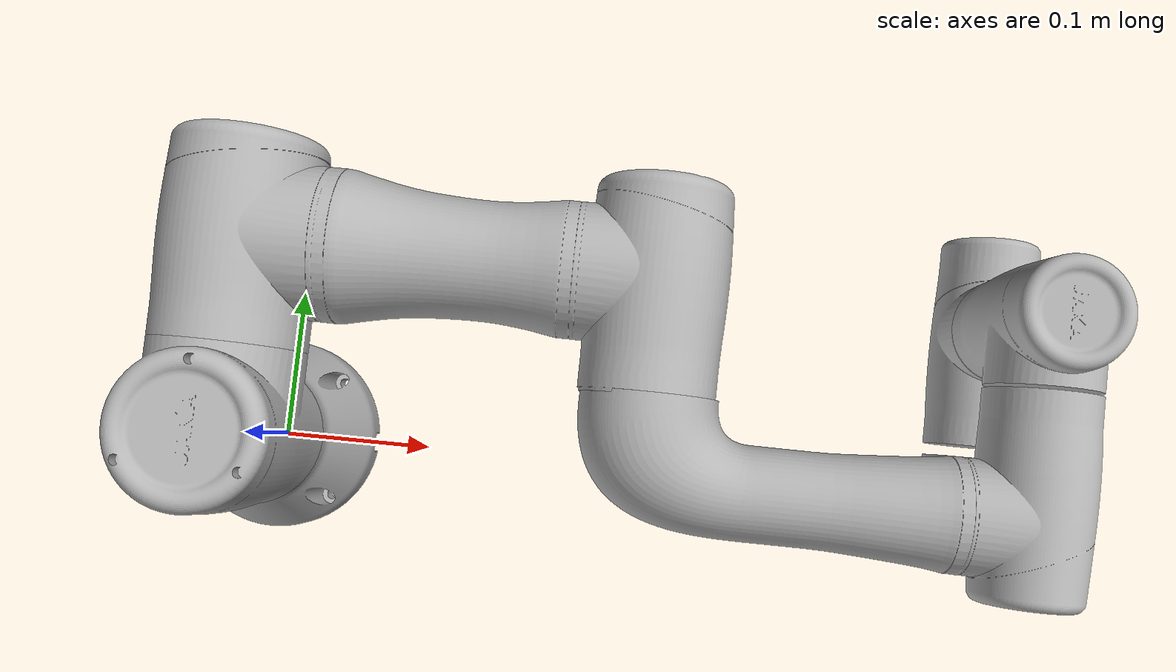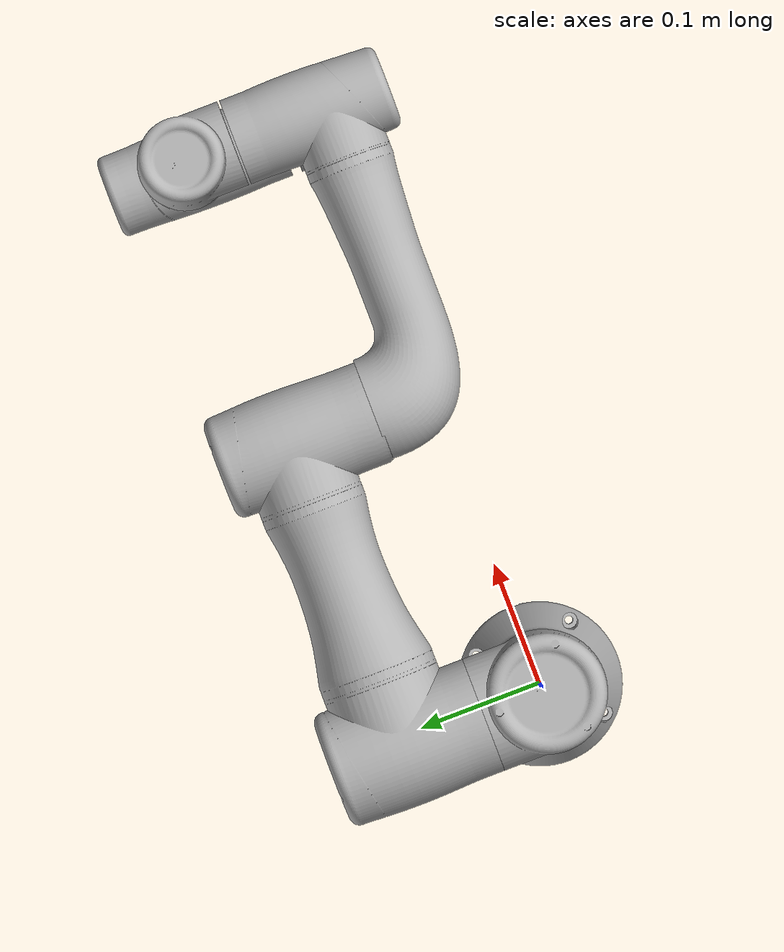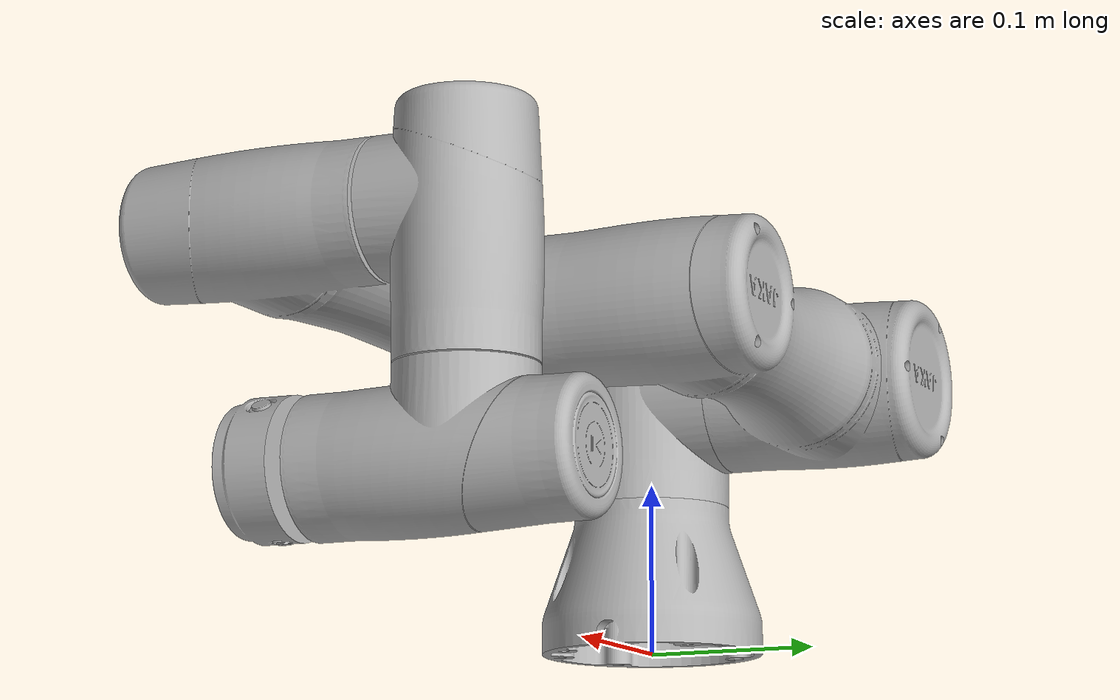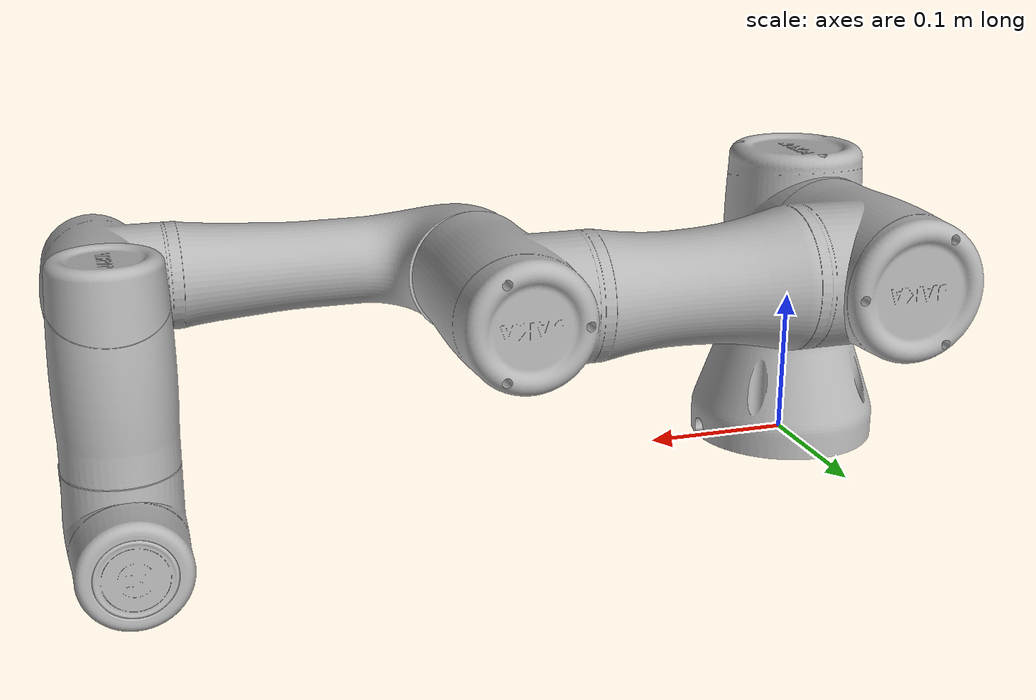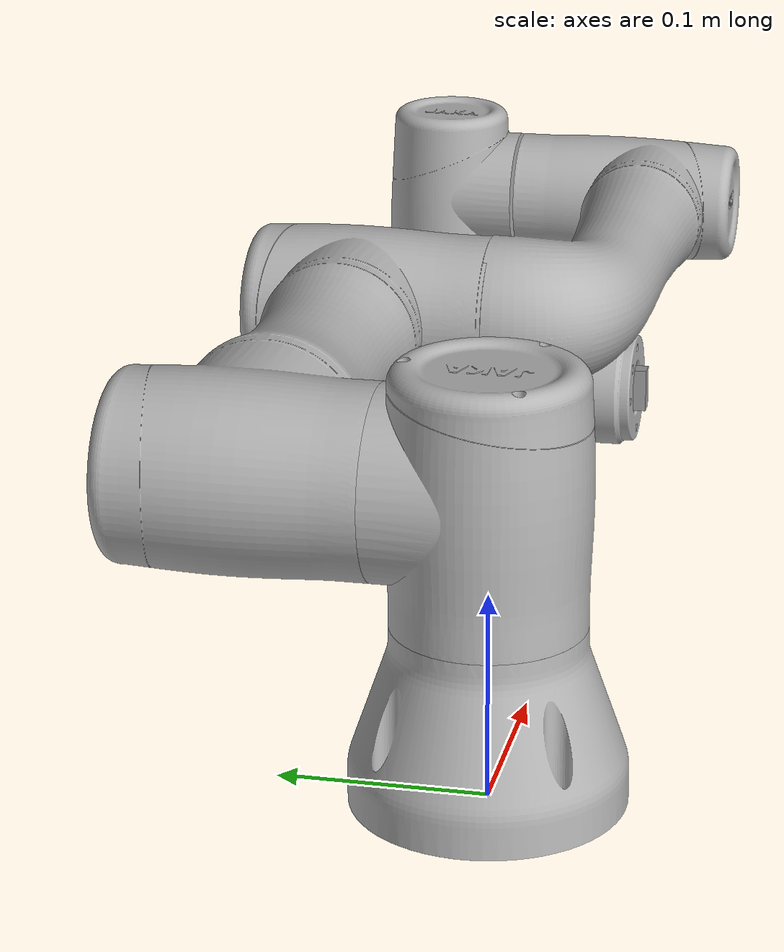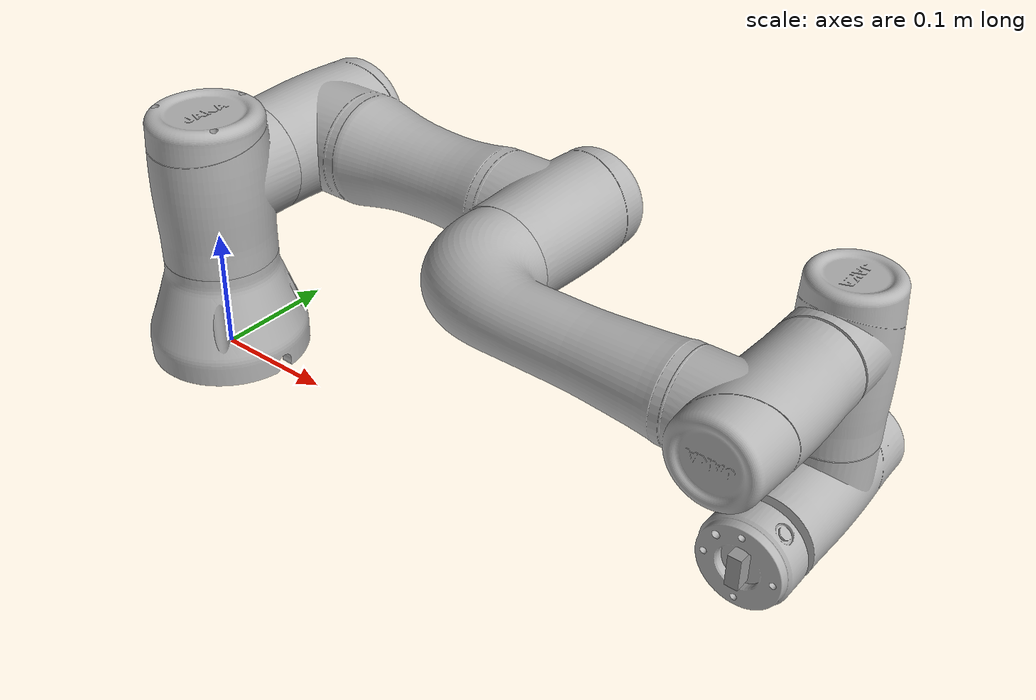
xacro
<?xml version="1.0" encoding="utf-8" ?>

<robot name="jaka_zu3" xmlns:xacro="http://www.ros.org/wiki/xacro">
  <xacro:include filename="gazebo_control.xacro" />
  <xacro:include filename="camera.xacro" />
  <xacro:macro name="cylinder_inertial" params="radius length mass *origin">
    <inertial>
      <mass value="${mass}" />
      <xacro:insert_block name="origin" />
      <inertia ixx="${0.0833333 * mass * (3 * radius * radius + length * length)}" ixy="0.0" ixz="0.0"
        iyy="${0.0833333 * mass * (3 * radius * radius + length * length)}" iyz="0.0"
        izz="${0.5 * mass * radius * radius}" />
    </inertial>
  </xacro:macro>

  <xacro:property name="base_mass" value="2.0" />  <!-- This mass might be incorrect -->
  <xacro:property name="link1_mass" value="2.0" />
  <xacro:property name="link2_mass" value="3.42" />
  <xacro:property name="link3_mass" value="1.26" />
  <xacro:property name="link4_mass" value="0.8" />
  <xacro:property name="link5_mass" value="0.8" />
  <xacro:property name="link6_mass" value="0.35" />

  <link name="base_link">
    <inertial>
      <origin xyz="-0.0015666 1.7294E-05 0.05088" rpy="0 0 0" />
      <mass value="2.0" />
      <inertia ixx="1" ixy="0" ixz="0" iyy="1" iyz="0" izz="1" />
    </inertial>
    <visual>
      <origin xyz="0 0 0" rpy="0 0 0" />
      <geometry>
        <mesh filename="package://jaka_rviz/meshes/jaka_zu3_meshes/Link_0.STL" />
      </geometry>
      <material name="Grey">
        <color rgba="0.7 0.7 0.7 1.0" />
      </material>
    </visual>
    <collision>
      <origin xyz="0 0 0" rpy="0 0 0" />
      <geometry>
        <mesh filename="package://jaka_rviz/meshes/jaka_zu3_meshes/Link_0.STL" />
      </geometry>
    </collision>
  </link>
  <gazebo reference="base_link">
    <selfCollide>true</selfCollide>
  </gazebo>

  <link name="Link_1">
    <inertial>
      <origin xyz="-3.8197E-07 0.0039623 -0.0033438" rpy="0 0 0" />
      <mass value="2.0" />
      <inertia ixx="1" ixy="0" ixz="0" iyy="1" iyz="0" izz="1" />
    </inertial>
    <visual>
      <origin xyz="0 0 0" rpy="0 0 0" />
      <geometry>
        <mesh filename="package://jaka_rviz/meshes/jaka_zu3_meshes/Link_1.STL" />
      </geometry>
      <material name="Grey">
        <color rgba="0.7 0.7 0.7 1.0" />
      </material>
    </visual>
    <collision>
      <origin xyz="0 0 0" rpy="0 0 0" />
      <geometry>
        <mesh filename="package://jaka_rviz/meshes/jaka_zu3_meshes/Link_1.STL" />
      </geometry>
    </collision>
  </link>
  <gazebo reference="Link_1">
    <selfCollide>true</selfCollide>
  </gazebo>

  <joint name="joint_1" type="revolute">
    <origin xyz="0 0 0.15055" rpy="0 0 0" />
    <parent link="base_link" />
    <child link="Link_1" />
    <axis xyz="0 0 -1" />
    <limit lower="-3.1415926" upper="3.1415926" effort="330" velocity="2.16" />
    <dynamics damping="50" friction="1" />
  </joint>

  <link name="Link_2">
    <inertial>
      <origin xyz="0.11439 -6.6036E-07 -0.11395" rpy="0 0 0" />
      <mass value="3.42" />
      <inertia ixx="1" ixy="0" ixz="0" iyy="1" iyz="0" izz="1" />
    </inertial>
    <visual>
      <origin xyz="0 0 0" rpy="0 0 0" />
      <geometry>
        <mesh filename="package://jaka_rviz/meshes/jaka_zu3_meshes/Link_2.STL" />
      </geometry>
      <material name="Grey">
        <color rgba="0.7 0.7 0.7 1.0" />
      </material>
    </visual>
    <collision>
      <origin xyz="0 0 0" rpy="0 0 0" />
      <geometry>
        <mesh filename="package://jaka_rviz/meshes/jaka_zu3_meshes/Link_2.STL" />
      </geometry>
    </collision>
  </link>
  <gazebo reference="Link_2">
    <selfCollide>true</selfCollide>
  </gazebo>

  <joint name="joint_2" type="revolute">
    <origin xyz="0 0 0" rpy="1.5708 0 0" />
    <parent link="Link_1" />
    <child link="Link_2" />
    <axis xyz="0 0 1" />
    <limit lower="-3.1415926" upper="3.1415926" effort="330" velocity="2.16" />
    <dynamics damping="50" friction="1" />
  </joint>

  <link name="Link_3">
    <inertial>
      <origin xyz="0.13218 1.2348E-05 -0.0083734" rpy="0 0 0" />
      <mass  value="1.26" />
      <inertia ixx="1" ixy="0" ixz="0" iyy="1" iyz="0" izz="1" />
    </inertial>
    <visual>
      <origin xyz="0 0 0" rpy="0 0 0" />
      <geometry>
        <mesh filename="package://jaka_rviz/meshes/jaka_zu3_meshes/Link_3.STL" />
      </geometry>
      <material name="Grey">
        <color rgba="0.7 0.7 0.7 1.0" />
      </material>
    </visual>
    <collision>
      <origin xyz="0 0 0" rpy="0 0 0" />
      <geometry>
        <mesh filename="package://jaka_rviz/meshes/jaka_zu3_meshes/Link_3.STL" />
      </geometry>
    </collision>
  </link>
  <gazebo reference="Link_3">
    <selfCollide>true</selfCollide>
  </gazebo>

  <joint name="joint_3" type="revolute">
    <origin xyz="0.248 0 0" rpy="0 0 0" />
    <parent link="Link_2" />
    <child link="Link_3" />
    <axis xyz="0 0 1" />
    <limit lower="-3.1415926" upper="3.1415926" effort="330" velocity="2.16" />
    <dynamics damping="50" friction="1" />
  </joint>

  <link name="Link_4">
    <inertial>
      <origin xyz="6.5068E-08 -0.014052 0.0031614" rpy="0 0 0" />
      <mass value="0.8" />
      <inertia ixx="1" ixy="0" ixz="0" iyy="1" iyz="0" izz="1" />
    </inertial>
    <visual>
      <origin xyz="0 0 0" rpy="0 0 0" />
      <geometry>
        <mesh filename="package://jaka_rviz/meshes/jaka_zu3_meshes/Link_4.STL" />
      </geometry>
      <material name="Grey">
        <color rgba="0.7 0.7 0.7 1.0" />
      </material>
    </visual>
    <collision>
      <origin xyz="0 0 0" rpy="0 0 0" />
      <geometry>
        <mesh filename="package://jaka_rviz/meshes/jaka_zu3_meshes/Link_4.STL" />
      </geometry>
    </collision>
  </link>
  <gazebo reference="Link_4">
    <selfCollide>true</selfCollide>
  </gazebo>

  <joint name="joint_4" type="revolute">
    <origin xyz="0.228 1.1925E-05 -0.115" rpy="0 0 0" />
    <parent link="Link_3" />
    <child link="Link_4" />
    <axis xyz="0 0 1" />
    <limit lower="-3.1415926" upper="3.1415926" effort="330" velocity="2.16" />
    <dynamics damping="50" friction="1" />
  </joint>

  <link name="Link_5">
    <inertial>
      <origin xyz="7.9256E-08 0.0068655 -0.0029086" rpy="0 0 0" />
      <mass value="0.8" />
      <inertia ixx="1" ixy="0" ixz="0" iyy="1" iyz="0" izz="1" />
    </inertial>
    <visual>
      <origin xyz="0 0 0" rpy="0 0 0" />
      <geometry>
        <mesh filename="package://jaka_rviz/meshes/jaka_zu3_meshes/Link_5.STL" />
      </geometry>
      <material name="Grey">
        <color rgba="0.7 0.7 0.7 1.0" />
      </material>
    </visual>
    <collision>
      <origin xyz="0 0 0" rpy="0 0 0" />
      <geometry>
        <mesh filename="package://jaka_rviz/meshes/jaka_zu3_meshes/Link_5.STL" />
      </geometry>
    </collision>
  </link>
  <gazebo reference="Link_5">
    <selfCollide>true</selfCollide>
  </gazebo>

  <joint name="joint_5" type="revolute">
    <origin xyz="0 -0.1175 0" rpy="1.5708 0 0" />
    <parent link="Link_4" />
    <child link="Link_5" />
    <axis xyz="0 0 -1" />
    <limit lower="-3.1415926" upper="3.1415926" effort="330" velocity="2.16" />
    <dynamics damping="50" friction="1" />
  </joint>

  <link name="Link_6">
    <inertial>
      <origin xyz="4.9731E-05 -2.965E-05 -0.016372" rpy="0 0 0" />
      <mass value="0.35" />
      <inertia ixx="1" ixy="0" ixz="0" iyy="1" iyz="0" izz="1" />
    </inertial>
    <visual>
      <origin xyz="0 0 0" rpy="0 0 0" />
      <geometry>
        <mesh filename="package://jaka_rviz/meshes/jaka_zu3_meshes/Link_6.STL" />
      </geometry>
      <material name="Grey">
        <color rgba="0.7 0.7 0.7 1.0" />
      </material>
    </visual>
    <collision>
      <origin xyz="0 0 0" rpy="0 0 0" />
      <geometry>
        <mesh filename="package://jaka_rviz/meshes/jaka_zu3_meshes/Link_6.STL" />
      </geometry>
    </collision>
  </link>
  <gazebo reference="Link_6">
    <selfCollide>true</selfCollide>
  </gazebo>

  <joint name="joint_6" type="revolute">
    <origin xyz="0 0.1065 0" rpy="-1.5708 0 0" />
    <parent link="Link_5" />
    <child link="Link_6" />
    <axis xyz="0 0 -1" />
    <limit lower="-3.1415926" upper="3.1415926" effort="330" velocity="2.16" />
    <dynamics damping="50" friction="1" />
  </joint>

  <!-- camera_link -->
  <link name="camera_link">
    <visual>
      <geometry>
        <box size="0.01 0.025 0.025" />
      </geometry>
      <origin xyz="0.0 0.0 0.0" rpy="0.0 0.0 0.0" />
      <meterial name="black" />
    </visual>
  </link>

  <joint name="camera_joint" type="fixed" >
    <parent link="Link_6" />
    <child link="camera_link" />
    <origin xyz="0 0 0" rpy="0 0 0" />
  </joint>

  <link name="world" />

  <joint name="world_joint" type="fixed">
    <parent link="world" />
    <child link = "base_link" />
    <origin xyz="0.0 0.0 0.0" rpy="0.0 0.0 0.0" />
  </joint>

  <xacro:macro name="arm_transmission" params="joint_name">

      <transmission name="trans">
          <type>transmission_interface/SimpleTransmission</type>
          <joint name="${joint_name}">
            <hardwareInterface>hardware_interface/PositionJointInterface</hardwareInterface>
          </joint>
          <actuator name="motor">
            <hardwareInterface>hardware_interface/PositionJointInterface</hardwareInterface>
            <mechanicalReduction>1</mechanicalReduction>
          </actuator>
      </transmission>
  </xacro:macro>

    <xacro:arm_transmission joint_name='joint_1' />
    <xacro:arm_transmission joint_name='joint_2' />
    <xacro:arm_transmission joint_name='joint_3' />
    <xacro:arm_transmission joint_name='joint_4' />
    <xacro:arm_transmission joint_name='joint_5' />
    <xacro:arm_transmission joint_name='joint_6' />

</robot>
